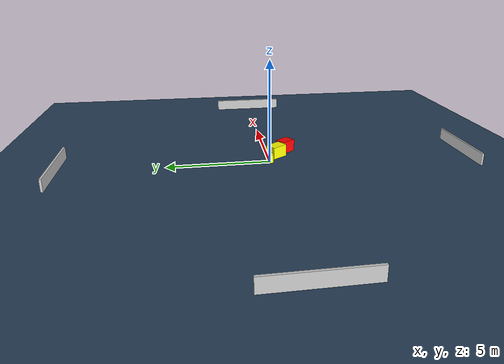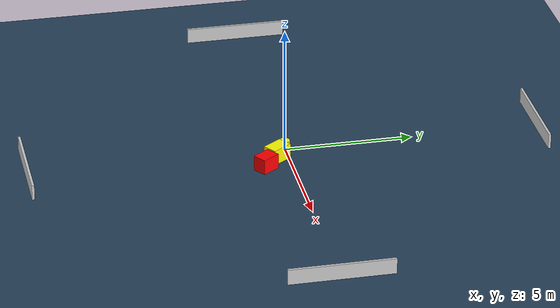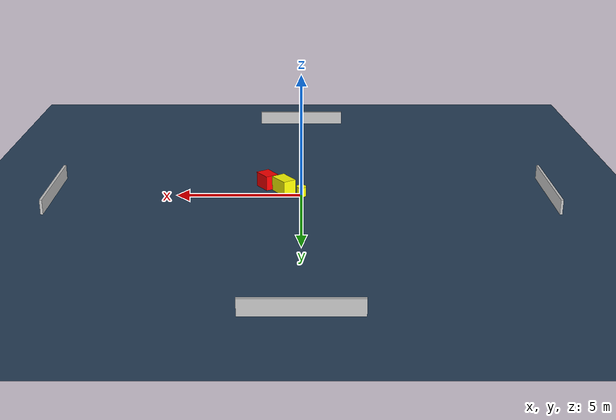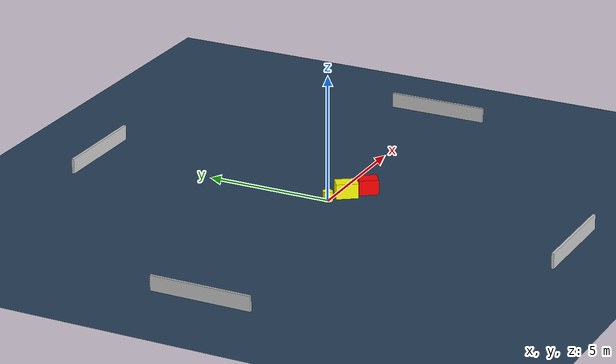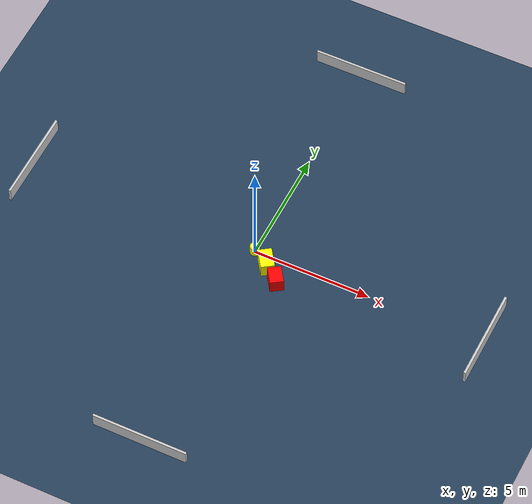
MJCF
<?xml version="1.0" ?>
<mujoco model="generated_environment">
  <option timestep="0.01" integrator="RK4" cone="elliptic"/>
  <default>
    <geom density="1"/>
  </default>
  <asset>
    <texture builtin="gradient" height="3072" name="skybox" rgb1="0.3 0.5 0.7" rgb2="0 0 0" type="skybox" width="512"/>
    <texture builtin="checker" height="300" name="groundplane" rgb1="0.2 0.3 0.4" rgb2="0.1 0.2 0.3" type="2d" width="300"/>
    <material name="groundplane" reflectance="0.2" texrepeat="5 5" texture="groundplane"/>
  </asset>
  <worldbody>
    <light dir="0 0 -1" directional="true" pos="0 0 1.5"/>
    <geom condim="3" friction="0.5 0.005 0.001" material="groundplane" name="floor" pos="0 0 0" size="0 0 0.05" type="plane"/>
    <body name="walls">
      <geom name="wall_1" condim="4" pos="-10.0 0.0 0.3" rgba="0.800000011920929 0.800000011920929 0.800000011920929 1.0" size="0.05 2.0 0.3" type="box"/>
      <geom name="wall_2" condim="4" pos="10.0 0.0 0.3" rgba="0.800000011920929 0.800000011920929 0.800000011920929 1.0" size="0.05 2.0 0.3" type="box"/>
      <geom name="wall_3" condim="4" pos="0.0 -10.0 0.3" rgba="0.800000011920929 0.800000011920929 0.800000011920929 1.0" size="2.0 0.05 0.3" type="box"/>
      <geom name="wall_4" condim="4" pos="0.0 10.0 0.3" rgba="0.800000011920929 0.800000011920929 0.800000011920929 1.0" size="2.0 0.05 0.3" type="box"/>
    </body>
    <body name="robot">
      <joint name="joint_x" type="slide" pos="0 0 0" axis="1 0 0"/>
      <joint name="joint_y" type="slide" pos="0 0 0" axis="0 1 0"/>
      <geom name="robot" type="cylinder" pos="0.0 0.0 0.2" size="0.2 0.2 0.0" mass="5.0" friction="1.0 0.005 0.0001" condim="4" rgba="1.0 1.0 0.0 1.0"/>
    </body>
    <body name="obstacle_1_movable">
      <geom name="obstacle_1_movable" condim="4" pos="0.7127416392318988 -0.4363168037303809 0.3" euler="0 0 124.67517354820767" friction="0.0 0.005 0.001" rgba="1.0 1.0 0.0 1.0" size="0.4306681192872336 0.285467662522565 0.3" type="box" mass="0.1"/>
      <joint type="free"/>
    </body>
    <body name="obstacle_2_static">
      <geom name="obstacle_2_static" condim="4" pos="1.4033942524850584 -1.0128007724510506 0.3" euler="0 0 304.4684018814757" friction="0.0 0.005 0.001" rgba="1.0 0.0 0.0 1.0" size="0.3756494124840787 0.2811889357624968 0.3" type="box"/>
    </body>
  </worldbody>
  <actuator>
    <motor name="actuator_x" joint="joint_x" gear="1" ctrlrange="-1 1"/>
    <motor name="actuator_y" joint="joint_y" gear="1" ctrlrange="-1 1"/>
  </actuator>
</mujoco>
